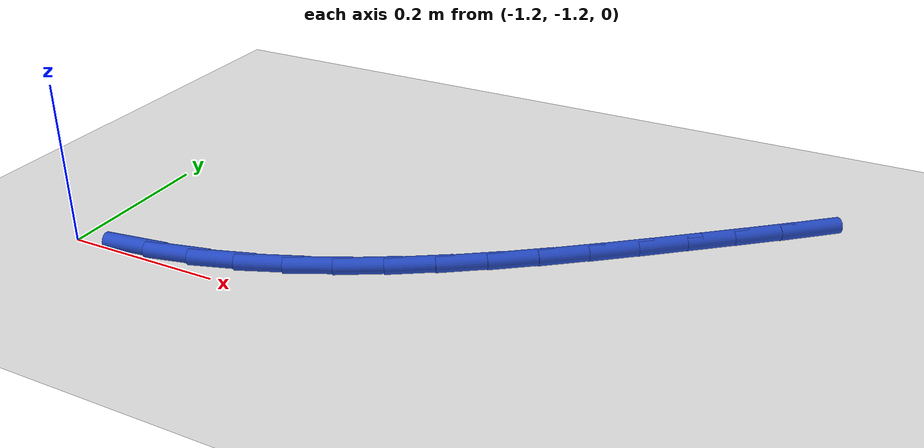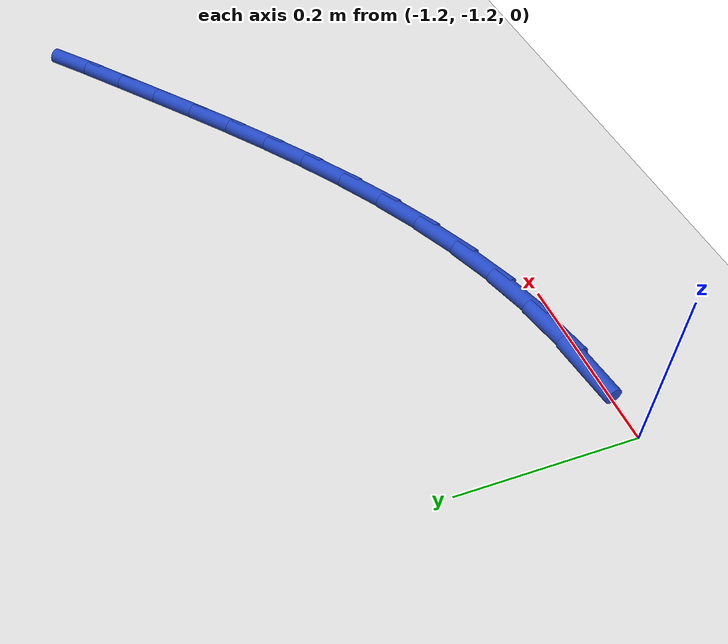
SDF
<sdf version="1.6">
 <world name="default">
  <model name="ground_plane">
   <static>1</static>
   <link name="link">
    <collision name="collision">
     <geometry><plane><normal>0 0 1</normal><size>100 100</size></plane></geometry>
     <surface><friction><ode><mu>100</mu><mu2>50</mu2></ode></friction></surface>
    </collision>
    <visual name="visual">
     <cast_shadows>0</cast_shadows>
     <geometry><plane><normal>0 0 1</normal><size>100 100</size></plane></geometry>
     <material>
      <script><uri>file://media/materials/scripts/gazebo.material</uri><name>Gazebo/WhiteGlow</name></script>
     </material>
    </visual>
   </link>
  </model>
  <model name="line">
   <link name="link_90">
    <pose>-1.1149990827771359 -1.1921568371640465 0.01 0 1.57 0.13312693689507524</pose>
    <collision name="collision">
     <geometry><cylinder><radius>0.01</radius><length>0.08</length></cylinder></geometry>
    </collision>
    <visual name="visual">
     <material>
      <script><name>Gazebo/Blue</name><uri>file://media/materials/scripts/gazebo.material</uri></script>
     </material>
     <geometry><cylinder><radius>0.01</radius><length>0.08</length></cylinder></geometry>
    </visual>
   </link>
   <link name="link_91">
    <pose>-1.0588146210373792 -1.1846326695387168 0.01 0 1.57 0.22105212514749015</pose>
    <collision name="collision">
     <geometry><cylinder><radius>0.01</radius><length>0.08</length></cylinder></geometry>
    </collision>
    <visual name="visual">
     <material>
      <script><name>Gazebo/Blue</name><uri>file://media/materials/scripts/gazebo.material</uri></script>
     </material>
     <geometry><cylinder><radius>0.01</radius><length>0.08</length></cylinder></geometry>
    </visual>
   </link>
   <link name="link_92">
    <pose>-1.0038363084823336 -1.1722777001784246 0.01 0 1.57 0.3064906380078002</pose>
    <collision name="collision">
     <geometry><cylinder><radius>0.01</radius><length>0.08</length></cylinder></geometry>
    </collision>
    <visual name="visual">
     <material>
      <script><name>Gazebo/Blue</name><uri>file://media/materials/scripts/gazebo.material</uri></script>
     </material>
     <geometry><cylinder><radius>0.01</radius><length>0.08</length></cylinder></geometry>
    </visual>
   </link>
   <link name="link_93">
    <pose>-0.9501083031463997 -1.1552748078679953 0.01 0 1.57 0.38300142822668704</pose>
    <collision name="collision">
     <geometry><cylinder><radius>0.01</radius><length>0.08</length></cylinder></geometry>
    </collision>
    <visual name="visual">
     <material>
      <script><name>Gazebo/Blue</name><uri>file://media/materials/scripts/gazebo.material</uri></script>
     </material>
     <geometry><cylinder><radius>0.01</radius><length>0.08</length></cylinder></geometry>
    </visual>
   </link>
   <link name="link_94">
    <pose>-0.8975315590271764 -1.1340917871524427 0.01 0 1.57 0.449987485837637</pose>
    <collision name="collision">
     <geometry><cylinder><radius>0.01</radius><length>0.08</length></cylinder></geometry>
    </collision>
    <visual name="visual">
     <material>
      <script><name>Gazebo/Blue</name><uri>file://media/materials/scripts/gazebo.material</uri></script>
     </material>
     <geometry><cylinder><radius>0.01</radius><length>0.08</length></cylinder></geometry>
    </visual>
   </link>
   <link name="link_95">
    <pose>-0.846004213221343 -1.1092020370240037 0.01 0 1.57 0.5074487245221155</pose>
    <collision name="collision">
     <geometry><cylinder><radius>0.01</radius><length>0.08</length></cylinder></geometry>
    </collision>
    <visual name="visual">
     <material>
      <script><name>Gazebo/Blue</name><uri>file://media/materials/scripts/gazebo.material</uri></script>
     </material>
     <geometry><cylinder><radius>0.01</radius><length>0.08</length></cylinder></geometry>
    </visual>
   </link>
   <link name="link_96">
    <pose>-0.795424402825578 -1.0810789564749144 0.01 0 1.57 0.5556903464375268</pose>
    <collision name="collision">
     <geometry><cylinder><radius>0.01</radius><length>0.08</length></cylinder></geometry>
    </collision>
    <visual name="visual">
     <material>
      <script><name>Gazebo/Blue</name><uri>file://media/materials/scripts/gazebo.material</uri></script>
     </material>
     <geometry><cylinder><radius>0.01</radius><length>0.08</length></cylinder></geometry>
    </visual>
   </link>
   <link name="link_97">
    <pose>-0.7456902649365622 -1.0501959444974118 0.01 0 1.57 0.5951656526725326</pose>
    <collision name="collision">
     <geometry><cylinder><radius>0.01</radius><length>0.08</length></cylinder></geometry>
    </collision>
    <visual name="visual">
     <material>
      <script><name>Gazebo/Blue</name><uri>file://media/materials/scripts/gazebo.material</uri></script>
     </material>
     <geometry><cylinder><radius>0.01</radius><length>0.08</length></cylinder></geometry>
    </visual>
   </link>
   <link name="link_98">
    <pose>-0.6966999366509746 -1.0170264000837326 0.01 0 1.57 0.6263599085905911</pose>
    <collision name="collision">
     <geometry><cylinder><radius>0.01</radius><length>0.08</length></cylinder></geometry>
    </collision>
    <visual name="visual">
     <material>
      <script><name>Gazebo/Blue</name><uri>file://media/materials/scripts/gazebo.material</uri></script>
     </material>
     <geometry><cylinder><radius>0.01</radius><length>0.08</length></cylinder></geometry>
    </visual>
   </link>
   <link name="link_99">
    <pose>-0.6483515550654949 -0.9820437222261138 0.01 0 1.57 0.6497127318067847</pose>
    <collision name="collision">
     <geometry><cylinder><radius>0.01</radius><length>0.08</length></cylinder></geometry>
    </collision>
    <visual name="visual">
     <material>
      <script><name>Gazebo/Blue</name><uri>file://media/materials/scripts/gazebo.material</uri></script>
     </material>
     <geometry><cylinder><radius>0.01</radius><length>0.08</length></cylinder></geometry>
    </visual>
   </link>
   <link name="link_100">
    <pose>-0.6005432572768017 -0.9457213099167909 0.01 0 1.57 0.6655697278016438</pose>
    <collision name="collision">
     <geometry><cylinder><radius>0.01</radius><length>0.08</length></cylinder></geometry>
    </collision>
    <visual name="visual">
     <material>
      <script><name>Gazebo/Blue</name><uri>file://media/materials/scripts/gazebo.material</uri></script>
     </material>
     <geometry><cylinder><radius>0.01</radius><length>0.08</length></cylinder></geometry>
    </visual>
   </link>
   <link name="link_101">
    <pose>-0.5531731803815759 -0.9085325621480024 0.01 0 1.57 0.6741535047225237</pose>
    <collision name="collision">
     <geometry><cylinder><radius>0.01</radius><length>0.08</length></cylinder></geometry>
    </collision>
    <visual name="visual">
     <material>
      <script><name>Gazebo/Blue</name><uri>file://media/materials/scripts/gazebo.material</uri></script>
     </material>
     <geometry><cylinder><radius>0.01</radius><length>0.08</length></cylinder></geometry>
    </visual>
   </link>
   <link name="link_102">
    <pose>-0.5061394614764964 -0.8709508779119838 0.01 0 1.57 0.677184967522503</pose>
    <collision name="collision">
     <geometry><cylinder><radius>0.01</radius><length>0.08</length></cylinder></geometry>
    </collision>
    <visual name="visual">
     <material>
      <script><name>Gazebo/Blue</name><uri>file://media/materials/scripts/gazebo.material</uri></script>
     </material>
     <geometry><cylinder><radius>0.01</radius><length>0.08</length></cylinder></geometry>
    </visual>
   </link>
   <link name="link_103">
    <pose>-0.45939178639856937 -0.8333649962988381 0.01 0 1.57 0.6844383428029078</pose>
    <collision name="collision">
     <geometry><cylinder><radius>0.01</radius><length>0.08</length></cylinder></geometry>
    </collision>
    <visual name="visual">
     <material>
      <script><name>Gazebo/Blue</name><uri>file://media/materials/scripts/gazebo.material</uri></script>
     </material>
     <geometry><cylinder><radius>0.01</radius><length>0.08</length></cylinder></geometry>
    </visual>
   </link>
   <link name="link_104">
    <pose>-0.4131864431527125 -0.7956601152963046 0.01 0 1.57 0.6996595541102553</pose>
    <collision name="collision">
     <geometry><cylinder><radius>0.01</radius><length>0.08</length></cylinder></geometry>
    </collision>
    <visual name="visual">
     <material>
      <script><name>Gazebo/Blue</name><uri>file://media/materials/scripts/gazebo.material</uri></script>
     </material>
     <geometry><cylinder><radius>0.01</radius><length>0.08</length></cylinder></geometry>
    </visual>
   </link>
  </model>
 </world>
</sdf>
